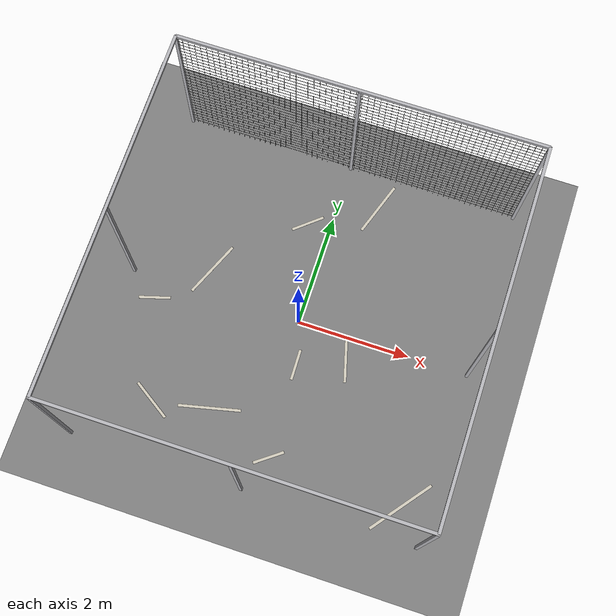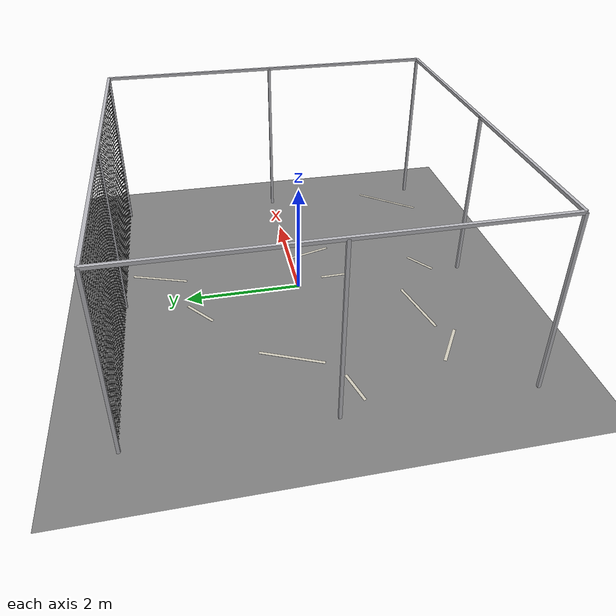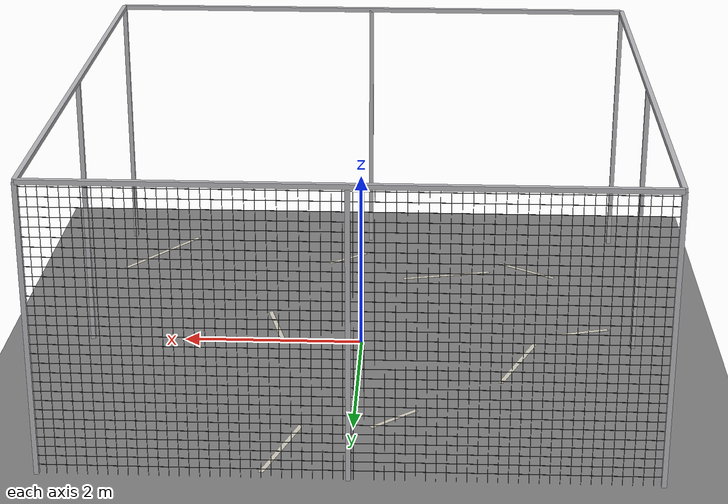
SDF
<sdf version="1.9">
 <world name="ecps295_lowbox_s28">
  <model name="ground_plane">
   <static>true</static>
   <link name="link">
    <collision name="collision">
     <geometry><plane><normal>0 0 1</normal><size>50 50</size></plane></geometry>
    </collision>
    <visual name="visual">
     <geometry><plane><normal>0 0 1</normal><size>50 50</size></plane></geometry>
     <material><ambient>0.5 0.5 0.5 1</ambient><diffuse>0.5 0.5 0.5 1</diffuse></material>
    </visual>
   </link>
  </model>
  <model name="floor_tape">
   <static>true</static>
   <link name="link">
    <visual name="tape0">
     <pose>-0.969 -1.920 0.003 0 0 0.2276</pose>
     <geometry><box><size>1.086 0.050 0.001</size></box></geometry>
     <material><ambient>0.82 0.80 0.74 1</ambient><diffuse>0.82 0.80 0.74 1</diffuse></material>
    </visual>
    <visual name="tape1">
     <pose>0.197 -0.739 0.003 0 0 1.5942</pose>
     <geometry><box><size>0.552 0.050 0.001</size></box></geometry>
     <material><ambient>0.82 0.80 0.74 1</ambient><diffuse>0.82 0.80 0.74 1</diffuse></material>
    </visual>
    <visual name="tape2">
     <pose>-2.544 -0.365 0.003 0 0 0.2850</pose>
     <geometry><box><size>0.563 0.050 0.001</size></box></geometry>
     <material><ambient>0.82 0.80 0.74 1</ambient><diffuse>0.82 0.80 0.74 1</diffuse></material>
    </visual>
    <visual name="tape3">
     <pose>-0.415 1.798 0.003 0 0 0.7013</pose>
     <geometry><box><size>0.611 0.050 0.001</size></box></geometry>
     <material><ambient>0.82 0.80 0.74 1</ambient><diffuse>0.82 0.80 0.74 1</diffuse></material>
    </visual>
    <visual name="tape4">
     <pose>0.701 2.462 0.003 0 0 1.2462</pose>
     <geometry><box><size>1.019 0.050 0.001</size></box></geometry>
     <material><ambient>0.82 0.80 0.74 1</ambient><diffuse>0.82 0.80 0.74 1</diffuse></material>
    </visual>
    <visual name="tape5">
     <pose>2.619 -2.494 0.003 0 0 0.9098</pose>
     <geometry><box><size>1.273 0.050 0.001</size></box></geometry>
     <material><ambient>0.82 0.80 0.74 1</ambient><diffuse>0.82 0.80 0.74 1</diffuse></material>
    </visual>
    <visual name="tape6">
     <pose>-1.957 -2.102 0.003 0 0 2.5639</pose>
     <geometry><box><size>0.778 0.050 0.001</size></box></geometry>
     <material><ambient>0.82 0.80 0.74 1</ambient><diffuse>0.82 0.80 0.74 1</diffuse></material>
    </visual>
    <visual name="tape7">
     <pose>-1.756 0.449 0.003 0 0 1.1699</pose>
     <geometry><box><size>1.075 0.050 0.001</size></box></geometry>
     <material><ambient>0.82 0.80 0.74 1</ambient><diffuse>0.82 0.80 0.74 1</diffuse></material>
    </visual>
    <visual name="tape8">
     <pose>0.263 -2.405 0.003 0 0 0.6470</pose>
     <geometry><box><size>0.554 0.050 0.001</size></box></geometry>
     <material><ambient>0.82 0.80 0.74 1</ambient><diffuse>0.82 0.80 0.74 1</diffuse></material>
    </visual>
    <visual name="tape9">
     <pose>0.992 -0.398 0.003 0 0 1.8396</pose>
     <geometry><box><size>0.783 0.050 0.001</size></box></geometry>
     <material><ambient>0.82 0.80 0.74 1</ambient><diffuse>0.82 0.80 0.74 1</diffuse></material>
    </visual>
   </link>
  </model>
  <model name="cage_frame">
   <static>true</static>
   <link name="link">
    <visual name="post0_0">
     <pose>-3.050 -3.050 1.525 0 0 0.0000</pose>
     <geometry><box><size>0.050 0.050 3.050</size></box></geometry>
     <material><ambient>0.72 0.72 0.74 1</ambient><diffuse>0.72 0.72 0.74 1</diffuse></material>
    </visual>
    <visual name="post0_1">
     <pose>-3.050 0.000 1.525 0 0 0.0000</pose>
     <geometry><box><size>0.050 0.050 3.050</size></box></geometry>
     <material><ambient>0.72 0.72 0.74 1</ambient><diffuse>0.72 0.72 0.74 1</diffuse></material>
    </visual>
    <visual name="post0_2">
     <pose>-3.050 3.050 1.525 0 0 0.0000</pose>
     <geometry><box><size>0.050 0.050 3.050</size></box></geometry>
     <material><ambient>0.72 0.72 0.74 1</ambient><diffuse>0.72 0.72 0.74 1</diffuse></material>
    </visual>
    <visual name="post1_0">
     <pose>0.000 -3.050 1.525 0 0 0.0000</pose>
     <geometry><box><size>0.050 0.050 3.050</size></box></geometry>
     <material><ambient>0.72 0.72 0.74 1</ambient><diffuse>0.72 0.72 0.74 1</diffuse></material>
    </visual>
    <visual name="post1_2">
     <pose>0.000 3.050 1.525 0 0 0.0000</pose>
     <geometry><box><size>0.050 0.050 3.050</size></box></geometry>
     <material><ambient>0.72 0.72 0.74 1</ambient><diffuse>0.72 0.72 0.74 1</diffuse></material>
    </visual>
    <visual name="post2_0">
     <pose>3.050 -3.050 1.525 0 0 0.0000</pose>
     <geometry><box><size>0.050 0.050 3.050</size></box></geometry>
     <material><ambient>0.72 0.72 0.74 1</ambient><diffuse>0.72 0.72 0.74 1</diffuse></material>
    </visual>
    <visual name="post2_1">
     <pose>3.050 0.000 1.525 0 0 0.0000</pose>
     <geometry><box><size>0.050 0.050 3.050</size></box></geometry>
     <material><ambient>0.72 0.72 0.74 1</ambient><diffuse>0.72 0.72 0.74 1</diffuse></material>
    </visual>
    <visual name="post2_2">
     <pose>3.050 3.050 1.525 0 0 0.0000</pose>
     <geometry><box><size>0.050 0.050 3.050</size></box></geometry>
     <material><ambient>0.72 0.72 0.74 1</ambient><diffuse>0.72 0.72 0.74 1</diffuse></material>
    </visual>
    <visual name="railx0">
     <pose>0.000 -3.050 3.050 0 0 0.0000</pose>
     <geometry><box><size>6.100 0.050 0.050</size></box></geometry>
     <material><ambient>0.72 0.72 0.74 1</ambient><diffuse>0.72 0.72 0.74 1</diffuse></material>
    </visual>
    <visual name="raily0">
     <pose>-3.050 0.000 3.050 0 0 0.0000</pose>
     <geometry><box><size>0.050 6.100 0.050</size></box></geometry>
     <material><ambient>0.72 0.72 0.74 1</ambient><diffuse>0.72 0.72 0.74 1</diffuse></material>
    </visual>
    <visual name="railx1">
     <pose>0.000 3.050 3.050 0 0 0.0000</pose>
     <geometry><box><size>6.100 0.050 0.050</size></box></geometry>
     <material><ambient>0.72 0.72 0.74 1</ambient><diffuse>0.72 0.72 0.74 1</diffuse></material>
    </visual>
    <visual name="raily1">
     <pose>3.050 0.000 3.050 0 0 0.0000</pose>
     <geometry><box><size>0.050 6.100 0.050</size></box></geometry>
     <material><ambient>0.72 0.72 0.74 1</ambient><diffuse>0.72 0.72 0.74 1</diffuse></material>
    </visual>
   </link>
  </model>
  <model name="net_n">
   <static>true</static>
   <link name="link">
    <collision name="c">
     <pose>0.000 3.050 1.525 0 0 0</pose>
     <geometry><box><size>6.100 0.020 3.050</size></box></geometry>
    </collision>
    <visual name="v0">
     <pose>-3.050 3.050 1.525 0 0 0.0000</pose>
     <geometry><box><size>0.004 0.004 3.050</size></box></geometry>
     <material><ambient>0.16 0.16 0.16 1</ambient><diffuse>0.16 0.16 0.16 1</diffuse></material>
    </visual>
    <visual name="v1">
     <pose>-2.950 3.050 1.525 0 0 0.0000</pose>
     <geometry><box><size>0.004 0.004 3.050</size></box></geometry>
     <material><ambient>0.16 0.16 0.16 1</ambient><diffuse>0.16 0.16 0.16 1</diffuse></material>
    </visual>
    <visual name="v2">
     <pose>-2.850 3.050 1.525 0 0 0.0000</pose>
     <geometry><box><size>0.004 0.004 3.050</size></box></geometry>
     <material><ambient>0.16 0.16 0.16 1</ambient><diffuse>0.16 0.16 0.16 1</diffuse></material>
    </visual>
    <visual name="v3">
     <pose>-2.750 3.050 1.525 0 0 0.0000</pose>
     <geometry><box><size>0.004 0.004 3.050</size></box></geometry>
     <material><ambient>0.16 0.16 0.16 1</ambient><diffuse>0.16 0.16 0.16 1</diffuse></material>
    </visual>
    <visual name="v4">
     <pose>-2.650 3.050 1.525 0 0 0.0000</pose>
     <geometry><box><size>0.004 0.004 3.050</size></box></geometry>
     <material><ambient>0.16 0.16 0.16 1</ambient><diffuse>0.16 0.16 0.16 1</diffuse></material>
    </visual>
    <visual name="v5">
     <pose>-2.550 3.050 1.525 0 0 0.0000</pose>
     <geometry><box><size>0.004 0.004 3.050</size></box></geometry>
     <material><ambient>0.16 0.16 0.16 1</ambient><diffuse>0.16 0.16 0.16 1</diffuse></material>
    </visual>
    <visual name="v6">
     <pose>-2.450 3.050 1.525 0 0 0.0000</pose>
     <geometry><box><size>0.004 0.004 3.050</size></box></geometry>
     <material><ambient>0.16 0.16 0.16 1</ambient><diffuse>0.16 0.16 0.16 1</diffuse></material>
    </visual>
    <visual name="v7">
     <pose>-2.350 3.050 1.525 0 0 0.0000</pose>
     <geometry><box><size>0.004 0.004 3.050</size></box></geometry>
     <material><ambient>0.16 0.16 0.16 1</ambient><diffuse>0.16 0.16 0.16 1</diffuse></material>
    </visual>
    <visual name="v8">
     <pose>-2.250 3.050 1.525 0 0 0.0000</pose>
     <geometry><box><size>0.004 0.004 3.050</size></box></geometry>
     <material><ambient>0.16 0.16 0.16 1</ambient><diffuse>0.16 0.16 0.16 1</diffuse></material>
    </visual>
    <visual name="v9">
     <pose>-2.150 3.050 1.525 0 0 0.0000</pose>
     <geometry><box><size>0.004 0.004 3.050</size></box></geometry>
     <material><ambient>0.16 0.16 0.16 1</ambient><diffuse>0.16 0.16 0.16 1</diffuse></material>
    </visual>
    <visual name="v10">
     <pose>-2.050 3.050 1.525 0 0 0.0000</pose>
     <geometry><box><size>0.004 0.004 3.050</size></box></geometry>
     <material><ambient>0.16 0.16 0.16 1</ambient><diffuse>0.16 0.16 0.16 1</diffuse></material>
    </visual>
    <visual name="v11">
     <pose>-1.950 3.050 1.525 0 0 0.0000</pose>
     <geometry><box><size>0.004 0.004 3.050</size></box></geometry>
     <material><ambient>0.16 0.16 0.16 1</ambient><diffuse>0.16 0.16 0.16 1</diffuse></material>
    </visual>
    <visual name="v12">
     <pose>-1.850 3.050 1.525 0 0 0.0000</pose>
     <geometry><box><size>0.004 0.004 3.050</size></box></geometry>
     <material><ambient>0.16 0.16 0.16 1</ambient><diffuse>0.16 0.16 0.16 1</diffuse></material>
    </visual>
    <visual name="v13">
     <pose>-1.750 3.050 1.525 0 0 0.0000</pose>
     <geometry><box><size>0.004 0.004 3.050</size></box></geometry>
     <material><ambient>0.16 0.16 0.16 1</ambient><diffuse>0.16 0.16 0.16 1</diffuse></material>
    </visual>
    <visual name="v14">
     <pose>-1.650 3.050 1.525 0 0 0.0000</pose>
     <geometry><box><size>0.004 0.004 3.050</size></box></geometry>
     <material><ambient>0.16 0.16 0.16 1</ambient><diffuse>0.16 0.16 0.16 1</diffuse></material>
    </visual>
    <visual name="v15">
     <pose>-1.550 3.050 1.525 0 0 0.0000</pose>
     <geometry><box><size>0.004 0.004 3.050</size></box></geometry>
     <material><ambient>0.16 0.16 0.16 1</ambient><diffuse>0.16 0.16 0.16 1</diffuse></material>
    </visual>
    <visual name="v16">
     <pose>-1.450 3.050 1.525 0 0 0.0000</pose>
     <geometry><box><size>0.004 0.004 3.050</size></box></geometry>
     <material><ambient>0.16 0.16 0.16 1</ambient><diffuse>0.16 0.16 0.16 1</diffuse></material>
    </visual>
    <visual name="v17">
     <pose>-1.350 3.050 1.525 0 0 0.0000</pose>
     <geometry><box><size>0.004 0.004 3.050</size></box></geometry>
     <material><ambient>0.16 0.16 0.16 1</ambient><diffuse>0.16 0.16 0.16 1</diffuse></material>
    </visual>
    <visual name="v18">
     <pose>-1.250 3.050 1.525 0 0 0.0000</pose>
     <geometry><box><size>0.004 0.004 3.050</size></box></geometry>
     <material><ambient>0.16 0.16 0.16 1</ambient><diffuse>0.16 0.16 0.16 1</diffuse></material>
    </visual>
    <visual name="v19">
     <pose>-1.150 3.050 1.525 0 0 0.0000</pose>
     <geometry><box><size>0.004 0.004 3.050</size></box></geometry>
     <material><ambient>0.16 0.16 0.16 1</ambient><diffuse>0.16 0.16 0.16 1</diffuse></material>
    </visual>
    <visual name="v20">
     <pose>-1.050 3.050 1.525 0 0 0.0000</pose>
     <geometry><box><size>0.004 0.004 3.050</size></box></geometry>
     <material><ambient>0.16 0.16 0.16 1</ambient><diffuse>0.16 0.16 0.16 1</diffuse></material>
    </visual>
    <visual name="v21">
     <pose>-0.950 3.050 1.525 0 0 0.0000</pose>
     <geometry><box><size>0.004 0.004 3.050</size></box></geometry>
     <material><ambient>0.16 0.16 0.16 1</ambient><diffuse>0.16 0.16 0.16 1</diffuse></material>
    </visual>
    <visual name="v22">
     <pose>-0.850 3.050 1.525 0 0 0.0000</pose>
     <geometry><box><size>0.004 0.004 3.050</size></box></geometry>
     <material><ambient>0.16 0.16 0.16 1</ambient><diffuse>0.16 0.16 0.16 1</diffuse></material>
    </visual>
    <visual name="v23">
     <pose>-0.750 3.050 1.525 0 0 0.0000</pose>
     <geometry><box><size>0.004 0.004 3.050</size></box></geometry>
     <material><ambient>0.16 0.16 0.16 1</ambient><diffuse>0.16 0.16 0.16 1</diffuse></material>
    </visual>
    <visual name="v24">
     <pose>-0.650 3.050 1.525 0 0 0.0000</pose>
     <geometry><box><size>0.004 0.004 3.050</size></box></geometry>
     <material><ambient>0.16 0.16 0.16 1</ambient><diffuse>0.16 0.16 0.16 1</diffuse></material>
    </visual>
    <visual name="v25">
     <pose>-0.550 3.050 1.525 0 0 0.0000</pose>
     <geometry><box><size>0.004 0.004 3.050</size></box></geometry>
     <material><ambient>0.16 0.16 0.16 1</ambient><diffuse>0.16 0.16 0.16 1</diffuse></material>
    </visual>
    <visual name="v26">
     <pose>-0.450 3.050 1.525 0 0 0.0000</pose>
     <geometry><box><size>0.004 0.004 3.050</size></box></geometry>
     <material><ambient>0.16 0.16 0.16 1</ambient><diffuse>0.16 0.16 0.16 1</diffuse></material>
    </visual>
    <visual name="v27">
     <pose>-0.350 3.050 1.525 0 0 0.0000</pose>
     <geometry><box><size>0.004 0.004 3.050</size></box></geometry>
     <material><ambient>0.16 0.16 0.16 1</ambient><diffuse>0.16 0.16 0.16 1</diffuse></material>
    </visual>
    <visual name="v28">
     <pose>-0.250 3.050 1.525 0 0 0.0000</pose>
     <geometry><box><size>0.004 0.004 3.050</size></box></geometry>
     <material><ambient>0.16 0.16 0.16 1</ambient><diffuse>0.16 0.16 0.16 1</diffuse></material>
    </visual>
    <visual name="v29">
     <pose>-0.150 3.050 1.525 0 0 0.0000</pose>
     <geometry><box><size>0.004 0.004 3.050</size></box></geometry>
     <material><ambient>0.16 0.16 0.16 1</ambient><diffuse>0.16 0.16 0.16 1</diffuse></material>
    </visual>
    <visual name="v30">
     <pose>-0.050 3.050 1.525 0 0 0.0000</pose>
     <geometry><box><size>0.004 0.004 3.050</size></box></geometry>
     <material><ambient>0.16 0.16 0.16 1</ambient><diffuse>0.16 0.16 0.16 1</diffuse></material>
    </visual>
    <visual name="v31">
     <pose>0.050 3.050 1.525 0 0 0.0000</pose>
     <geometry><box><size>0.004 0.004 3.050</size></box></geometry>
     <material><ambient>0.16 0.16 0.16 1</ambient><diffuse>0.16 0.16 0.16 1</diffuse></material>
    </visual>
    <visual name="v32">
     <pose>0.150 3.050 1.525 0 0 0.0000</pose>
     <geometry><box><size>0.004 0.004 3.050</size></box></geometry>
     <material><ambient>0.16 0.16 0.16 1</ambient><diffuse>0.16 0.16 0.16 1</diffuse></material>
    </visual>
    <visual name="v33">
     <pose>0.250 3.050 1.525 0 0 0.0000</pose>
     <geometry><box><size>0.004 0.004 3.050</size></box></geometry>
     <material><ambient>0.16 0.16 0.16 1</ambient><diffuse>0.16 0.16 0.16 1</diffuse></material>
    </visual>
    <visual name="v34">
     <pose>0.350 3.050 1.525 0 0 0.0000</pose>
     <geometry><box><size>0.004 0.004 3.050</size></box></geometry>
     <material><ambient>0.16 0.16 0.16 1</ambient><diffuse>0.16 0.16 0.16 1</diffuse></material>
    </visual>
    <visual name="v35">
     <pose>0.450 3.050 1.525 0 0 0.0000</pose>
     <geometry><box><size>0.004 0.004 3.050</size></box></geometry>
     <material><ambient>0.16 0.16 0.16 1</ambient><diffuse>0.16 0.16 0.16 1</diffuse></material>
    </visual>
    <visual name="v36">
     <pose>0.550 3.050 1.525 0 0 0.0000</pose>
     <geometry><box><size>0.004 0.004 3.050</size></box></geometry>
     <material><ambient>0.16 0.16 0.16 1</ambient><diffuse>0.16 0.16 0.16 1</diffuse></material>
    </visual>
    <visual name="v37">
     <pose>0.650 3.050 1.525 0 0 0.0000</pose>
     <geometry><box><size>0.004 0.004 3.050</size></box></geometry>
     <material><ambient>0.16 0.16 0.16 1</ambient><diffuse>0.16 0.16 0.16 1</diffuse></material>
    </visual>
    <visual name="v38">
     <pose>0.750 3.050 1.525 0 0 0.0000</pose>
     <geometry><box><size>0.004 0.004 3.050</size></box></geometry>
     <material><ambient>0.16 0.16 0.16 1</ambient><diffuse>0.16 0.16 0.16 1</diffuse></material>
    </visual>
    <visual name="v39">
     <pose>0.850 3.050 1.525 0 0 0.0000</pose>
     <geometry><box><size>0.004 0.004 3.050</size></box></geometry>
     <material><ambient>0.16 0.16 0.16 1</ambient><diffuse>0.16 0.16 0.16 1</diffuse></material>
    </visual>
    <visual name="v40">
     <pose>0.950 3.050 1.525 0 0 0.0000</pose>
     <geometry><box><size>0.004 0.004 3.050</size></box></geometry>
     <material><ambient>0.16 0.16 0.16 1</ambient><diffuse>0.16 0.16 0.16 1</diffuse></material>
    </visual>
    <visual name="v41">
     <pose>1.050 3.050 1.525 0 0 0.0000</pose>
     <geometry><box><size>0.004 0.004 3.050</size></box></geometry>
     <material><ambient>0.16 0.16 0.16 1</ambient><diffuse>0.16 0.16 0.16 1</diffuse></material>
    </visual>
    <visual name="v42">
     <pose>1.150 3.050 1.525 0 0 0.0000</pose>
     <geometry><box><size>0.004 0.004 3.050</size></box></geometry>
     <material><ambient>0.16 0.16 0.16 1</ambient><diffuse>0.16 0.16 0.16 1</diffuse></material>
    </visual>
    <visual name="v43">
     <pose>1.250 3.050 1.525 0 0 0.0000</pose>
     <geometry><box><size>0.004 0.004 3.050</size></box></geometry>
     <material><ambient>0.16 0.16 0.16 1</ambient><diffuse>0.16 0.16 0.16 1</diffuse></material>
    </visual>
    <visual name="v44">
     <pose>1.350 3.050 1.525 0 0 0.0000</pose>
     <geometry><box><size>0.004 0.004 3.050</size></box></geometry>
     <material><ambient>0.16 0.16 0.16 1</ambient><diffuse>0.16 0.16 0.16 1</diffuse></material>
    </visual>
    <visual name="v45">
     <pose>1.450 3.050 1.525 0 0 0.0000</pose>
     <geometry><box><size>0.004 0.004 3.050</size></box></geometry>
     <material><ambient>0.16 0.16 0.16 1</ambient><diffuse>0.16 0.16 0.16 1</diffuse></material>
    </visual>
    <visual name="v46">
     <pose>1.550 3.050 1.525 0 0 0.0000</pose>
     <geometry><box><size>0.004 0.004 3.050</size></box></geometry>
     <material><ambient>0.16 0.16 0.16 1</ambient><diffuse>0.16 0.16 0.16 1</diffuse></material>
    </visual>
    <visual name="v47">
     <pose>1.650 3.050 1.525 0 0 0.0000</pose>
     <geometry><box><size>0.004 0.004 3.050</size></box></geometry>
     <material><ambient>0.16 0.16 0.16 1</ambient><diffuse>0.16 0.16 0.16 1</diffuse></material>
    </visual>
    <visual name="v48">
     <pose>1.750 3.050 1.525 0 0 0.0000</pose>
     <geometry><box><size>0.004 0.004 3.050</size></box></geometry>
     <material><ambient>0.16 0.16 0.16 1</ambient><diffuse>0.16 0.16 0.16 1</diffuse></material>
    </visual>
    <visual name="v49">
     <pose>1.850 3.050 1.525 0 0 0.0000</pose>
     <geometry><box><size>0.004 0.004 3.050</size></box></geometry>
     <material><ambient>0.16 0.16 0.16 1</ambient><diffuse>0.16 0.16 0.16 1</diffuse></material>
    </visual>
    <visual name="v50">
     <pose>1.950 3.050 1.525 0 0 0.0000</pose>
     <geometry><box><size>0.004 0.004 3.050</size></box></geometry>
     <material><ambient>0.16 0.16 0.16 1</ambient><diffuse>0.16 0.16 0.16 1</diffuse></material>
    </visual>
    <visual name="v51">
     <pose>2.050 3.050 1.525 0 0 0.0000</pose>
     <geometry><box><size>0.004 0.004 3.050</size></box></geometry>
     <material><ambient>0.16 0.16 0.16 1</ambient><diffuse>0.16 0.16 0.16 1</diffuse></material>
    </visual>
    <visual name="v52">
     <pose>2.150 3.050 1.525 0 0 0.0000</pose>
     <geometry><box><size>0.004 0.004 3.050</size></box></geometry>
     <material><ambient>0.16 0.16 0.16 1</ambient><diffuse>0.16 0.16 0.16 1</diffuse></material>
    </visual>
    <visual name="v53">
     <pose>2.250 3.050 1.525 0 0 0.0000</pose>
     <geometry><box><size>0.004 0.004 3.050</size></box></geometry>
     <material><ambient>0.16 0.16 0.16 1</ambient><diffuse>0.16 0.16 0.16 1</diffuse></material>
    </visual>
    <visual name="v54">
     <pose>2.350 3.050 1.525 0 0 0.0000</pose>
     <geometry><box><size>0.004 0.004 3.050</size></box></geometry>
     <material><ambient>0.16 0.16 0.16 1</ambient><diffuse>0.16 0.16 0.16 1</diffuse></material>
    </visual>
    <visual name="v55">
     <pose>2.450 3.050 1.525 0 0 0.0000</pose>
     <geometry><box><size>0.004 0.004 3.050</size></box></geometry>
     <material><ambient>0.16 0.16 0.16 1</ambient><diffuse>0.16 0.16 0.16 1</diffuse></material>
    </visual>
    <visual name="v56">
     <pose>2.550 3.050 1.525 0 0 0.0000</pose>
     <geometry><box><size>0.004 0.004 3.050</size></box></geometry>
     <material><ambient>0.16 0.16 0.16 1</ambient><diffuse>0.16 0.16 0.16 1</diffuse></material>
    </visual>
    <visual name="v57">
     <pose>2.650 3.050 1.525 0 0 0.0000</pose>
     <geometry><box><size>0.004 0.004 3.050</size></box></geometry>
     <material><ambient>0.16 0.16 0.16 1</ambient><diffuse>0.16 0.16 0.16 1</diffuse></material>
    </visual>
    <visual name="v58">
     <pose>2.750 3.050 1.525 0 0 0.0000</pose>
     <geometry><box><size>0.004 0.004 3.050</size></box></geometry>
     <material><ambient>0.16 0.16 0.16 1</ambient><diffuse>0.16 0.16 0.16 1</diffuse></material>
    </visual>
    <visual name="v59">
     <pose>2.850 3.050 1.525 0 0 0.0000</pose>
     <geometry><box><size>0.004 0.004 3.050</size></box></geometry>
     <material><ambient>0.16 0.16 0.16 1</ambient><diffuse>0.16 0.16 0.16 1</diffuse></material>
    </visual>
    <visual name="v60">
     <pose>2.950 3.050 1.525 0 0 0.0000</pose>
     <geometry><box><size>0.004 0.004 3.050</size></box></geometry>
     <material><ambient>0.16 0.16 0.16 1</ambient><diffuse>0.16 0.16 0.16 1</diffuse></material>
    </visual>
    <visual name="h1">
     <pose>0.000 3.050 0.100 0 0 0.0000</pose>
     <geometry><box><size>6.100 0.004 0.004</size></box></geometry>
     <material><ambient>0.16 0.16 0.16 1</ambient><diffuse>0.16 0.16 0.16 1</diffuse></material>
    </visual>
    <visual name="h2">
     <pose>0.000 3.050 0.200 0 0 0.0000</pose>
     <geometry><box><size>6.100 0.004 0.004</size></box></geometry>
     <material><ambient>0.16 0.16 0.16 1</ambient><diffuse>0.16 0.16 0.16 1</diffuse></material>
    </visual>
    <visual name="h3">
     <pose>0.000 3.050 0.300 0 0 0.0000</pose>
     <geometry><box><size>6.100 0.004 0.004</size></box></geometry>
     <material><ambient>0.16 0.16 0.16 1</ambient><diffuse>0.16 0.16 0.16 1</diffuse></material>
    </visual>
    <visual name="h4">
     <pose>0.000 3.050 0.400 0 0 0.0000</pose>
     <geometry><box><size>6.100 0.004 0.004</size></box></geometry>
     <material><ambient>0.16 0.16 0.16 1</ambient><diffuse>0.16 0.16 0.16 1</diffuse></material>
    </visual>
    <visual name="h5">
     <pose>0.000 3.050 0.500 0 0 0.0000</pose>
     <geometry><box><size>6.100 0.004 0.004</size></box></geometry>
     <material><ambient>0.16 0.16 0.16 1</ambient><diffuse>0.16 0.16 0.16 1</diffuse></material>
    </visual>
    <visual name="h6">
     <pose>0.000 3.050 0.600 0 0 0.0000</pose>
     <geometry><box><size>6.100 0.004 0.004</size></box></geometry>
     <material><ambient>0.16 0.16 0.16 1</ambient><diffuse>0.16 0.16 0.16 1</diffuse></material>
    </visual>
    <visual name="h7">
     <pose>0.000 3.050 0.700 0 0 0.0000</pose>
     <geometry><box><size>6.100 0.004 0.004</size></box></geometry>
     <material><ambient>0.16 0.16 0.16 1</ambient><diffuse>0.16 0.16 0.16 1</diffuse></material>
    </visual>
    <visual name="h8">
     <pose>0.000 3.050 0.800 0 0 0.0000</pose>
     <geometry><box><size>6.100 0.004 0.004</size></box></geometry>
     <material><ambient>0.16 0.16 0.16 1</ambient><diffuse>0.16 0.16 0.16 1</diffuse></material>
    </visual>
    <visual name="h9">
     <pose>0.000 3.050 0.900 0 0 0.0000</pose>
     <geometry><box><size>6.100 0.004 0.004</size></box></geometry>
     <material><ambient>0.16 0.16 0.16 1</ambient><diffuse>0.16 0.16 0.16 1</diffuse></material>
    </visual>
    <visual name="h10">
     <pose>0.000 3.050 1.000 0 0 0.0000</pose>
     <geometry><box><size>6.100 0.004 0.004</size></box></geometry>
     <material><ambient>0.16 0.16 0.16 1</ambient><diffuse>0.16 0.16 0.16 1</diffuse></material>
    </visual>
    <visual name="h11">
     <pose>0.000 3.050 1.100 0 0 0.0000</pose>
     <geometry><box><size>6.100 0.004 0.004</size></box></geometry>
     <material><ambient>0.16 0.16 0.16 1</ambient><diffuse>0.16 0.16 0.16 1</diffuse></material>
    </visual>
    <visual name="h12">
     <pose>0.000 3.050 1.200 0 0 0.0000</pose>
     <geometry><box><size>6.100 0.004 0.004</size></box></geometry>
     <material><ambient>0.16 0.16 0.16 1</ambient><diffuse>0.16 0.16 0.16 1</diffuse></material>
    </visual>
    <visual name="h13">
     <pose>0.000 3.050 1.300 0 0 0.0000</pose>
     <geometry><box><size>6.100 0.004 0.004</size></box></geometry>
     <material><ambient>0.16 0.16 0.16 1</ambient><diffuse>0.16 0.16 0.16 1</diffuse></material>
    </visual>
    <visual name="h14">
     <pose>0.000 3.050 1.400 0 0 0.0000</pose>
     <geometry><box><size>6.100 0.004 0.004</size></box></geometry>
     <material><ambient>0.16 0.16 0.16 1</ambient><diffuse>0.16 0.16 0.16 1</diffuse></material>
    </visual>
    <visual name="h15">
     <pose>0.000 3.050 1.500 0 0 0.0000</pose>
     <geometry><box><size>6.100 0.004 0.004</size></box></geometry>
     <material><ambient>0.16 0.16 0.16 1</ambient><diffuse>0.16 0.16 0.16 1</diffuse></material>
    </visual>
    <visual name="h16">
     <pose>0.000 3.050 1.600 0 0 0.0000</pose>
     <geometry><box><size>6.100 0.004 0.004</size></box></geometry>
     <material><ambient>0.16 0.16 0.16 1</ambient><diffuse>0.16 0.16 0.16 1</diffuse></material>
    </visual>
    <visual name="h17">
     <pose>0.000 3.050 1.700 0 0 0.0000</pose>
     <geometry><box><size>6.100 0.004 0.004</size></box></geometry>
     <material><ambient>0.16 0.16 0.16 1</ambient><diffuse>0.16 0.16 0.16 1</diffuse></material>
    </visual>
    <visual name="h18">
     <pose>0.000 3.050 1.800 0 0 0.0000</pose>
     <geometry><box><size>6.100 0.004 0.004</size></box></geometry>
     <material><ambient>0.16 0.16 0.16 1</ambient><diffuse>0.16 0.16 0.16 1</diffuse></material>
    </visual>
    <visual name="h19">
     <pose>0.000 3.050 1.900 0 0 0.0000</pose>
     <geometry><box><size>6.100 0.004 0.004</size></box></geometry>
     <material><ambient>0.16 0.16 0.16 1</ambient><diffuse>0.16 0.16 0.16 1</diffuse></material>
    </visual>
    <visual name="h20">
     <pose>0.000 3.050 2.000 0 0 0.0000</pose>
     <geometry><box><size>6.100 0.004 0.004</size></box></geometry>
     <material><ambient>0.16 0.16 0.16 1</ambient><diffuse>0.16 0.16 0.16 1</diffuse></material>
    </visual>
    <visual name="h21">
     <pose>0.000 3.050 2.100 0 0 0.0000</pose>
     <geometry><box><size>6.100 0.004 0.004</size></box></geometry>
     <material><ambient>0.16 0.16 0.16 1</ambient><diffuse>0.16 0.16 0.16 1</diffuse></material>
    </visual>
    <visual name="h22">
     <pose>0.000 3.050 2.200 0 0 0.0000</pose>
     <geometry><box><size>6.100 0.004 0.004</size></box></geometry>
     <material><ambient>0.16 0.16 0.16 1</ambient><diffuse>0.16 0.16 0.16 1</diffuse></material>
    </visual>
    <visual name="h23">
     <pose>0.000 3.050 2.300 0 0 0.0000</pose>
     <geometry><box><size>6.100 0.004 0.004</size></box></geometry>
     <material><ambient>0.16 0.16 0.16 1</ambient><diffuse>0.16 0.16 0.16 1</diffuse></material>
    </visual>
    <visual name="h24">
     <pose>0.000 3.050 2.400 0 0 0.0000</pose>
     <geometry><box><size>6.100 0.004 0.004</size></box></geometry>
     <material><ambient>0.16 0.16 0.16 1</ambient><diffuse>0.16 0.16 0.16 1</diffuse></material>
    </visual>
    <visual name="h25">
     <pose>0.000 3.050 2.500 0 0 0.0000</pose>
     <geometry><box><size>6.100 0.004 0.004</size></box></geometry>
     <material><ambient>0.16 0.16 0.16 1</ambient><diffuse>0.16 0.16 0.16 1</diffuse></material>
    </visual>
    <visual name="h26">
     <pose>0.000 3.050 2.600 0 0 0.0000</pose>
     <geometry><box><size>6.100 0.004 0.004</size></box></geometry>
     <material><ambient>0.16 0.16 0.16 1</ambient><diffuse>0.16 0.16 0.16 1</diffuse></material>
    </visual>
    <visual name="h27">
     <pose>0.000 3.050 2.700 0 0 0.0000</pose>
     <geometry><box><size>6.100 0.004 0.004</size></box></geometry>
     <material><ambient>0.16 0.16 0.16 1</ambient><diffuse>0.16 0.16 0.16 1</diffuse></material>
    </visual>
    <visual name="h28">
     <pose>0.000 3.050 2.800 0 0 0.0000</pose>
     <geometry><box><size>6.100 0.004 0.004</size></box></geometry>
     <material><ambient>0.16 0.16 0.16 1</ambient><diffuse>0.16 0.16 0.16 1</diffuse></material>
    </visual>
    <visual name="h29">
     <pose>0.000 3.050 2.900 0 0 0.0000</pose>
     <geometry><box><size>6.100 0.004 0.004</size></box></geometry>
     <material><ambient>0.16 0.16 0.16 1</ambient><diffuse>0.16 0.16 0.16 1</diffuse></material>
    </visual>
    <visual name="h30">
     <pose>0.000 3.050 3.000 0 0 0.0000</pose>
     <geometry><box><size>6.100 0.004 0.004</size></box></geometry>
     <material><ambient>0.16 0.16 0.16 1</ambient><diffuse>0.16 0.16 0.16 1</diffuse></material>
    </visual>
   </link>
  </model>
 </world>
</sdf>
